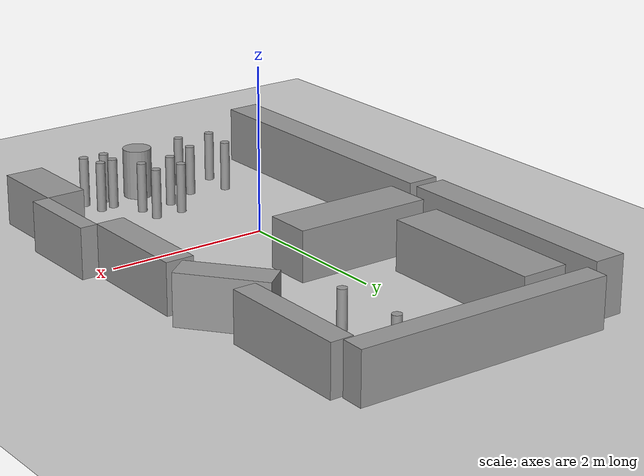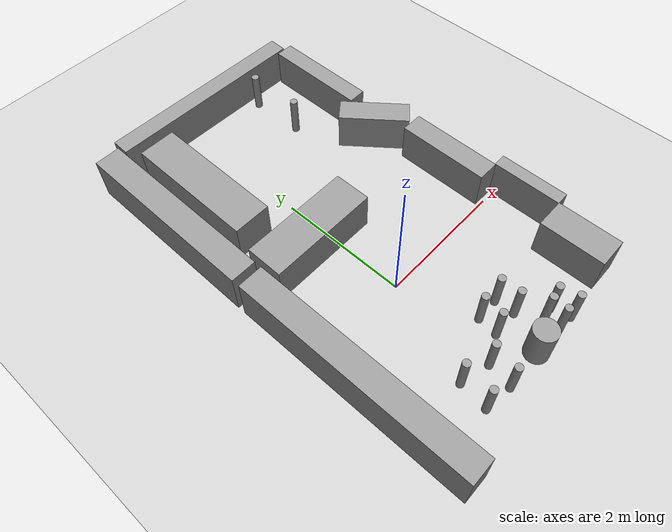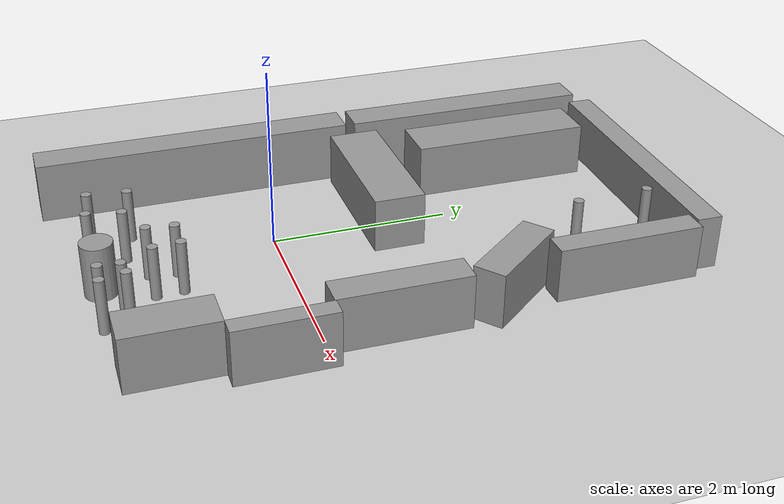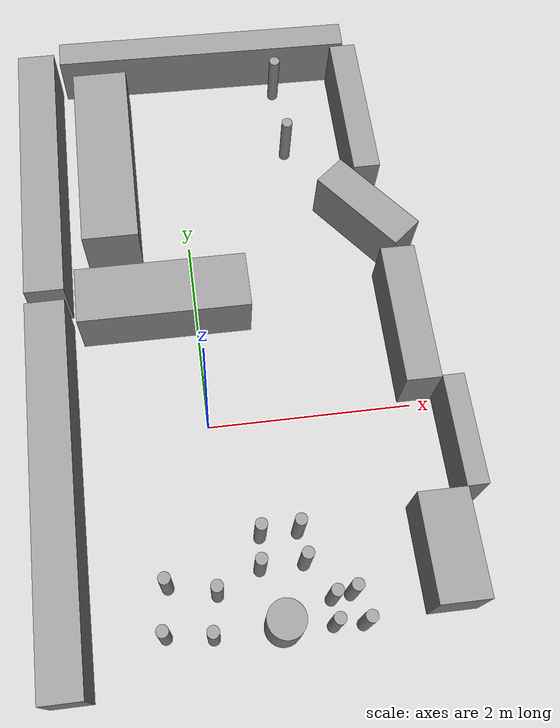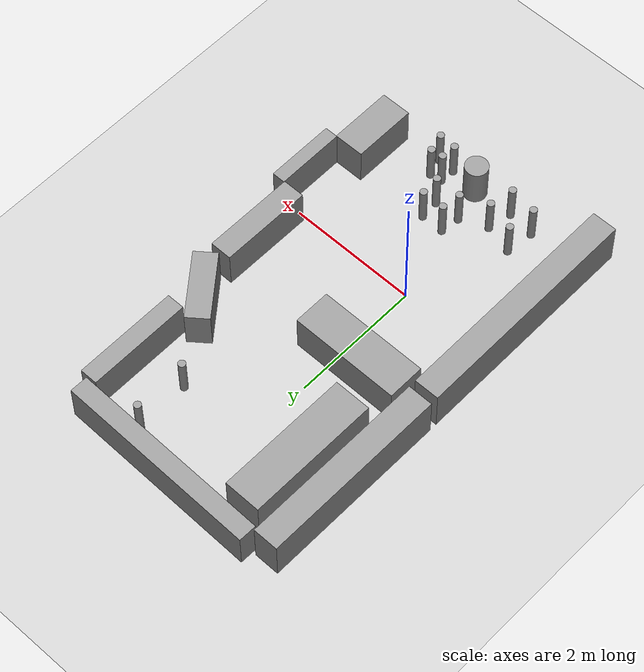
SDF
<sdf version="1.6">
 <world name="default">
  <light name="sun" type="directional">
   <pose>0 0 10 0 -0 0</pose>
   <diffuse>0.8 0.8 0.8 1</diffuse>
   <specular>0.2 0.2 0.2 1</specular>
   <attenuation>
    <range>1000</range>
    <constant>0.9</constant>
    <linear>0.01</linear>
    <quadratic>0.001</quadratic>
   </attenuation>
   <direction>-0.5 0.1 -0.9</direction>
  </light>
  <model name="ground_plane">
   <static>1</static>
   <link name="link">
    <collision name="collision">
     <geometry><plane><normal>0 0 1</normal><size>100 100</size></plane></geometry>
     <surface><friction><ode><mu>100</mu><mu2>50</mu2></ode></friction></surface>
    </collision>
    <visual name="visual">
     <cast_shadows>0</cast_shadows>
     <geometry><plane><normal>0 0 1</normal><size>100 100</size></plane></geometry>
     <material>
      <script><uri>file://media/materials/scripts/gazebo.material</uri><name>Gazebo/Grey</name></script>
     </material>
    </visual>
   </link>
  </model>
  <gravity>0 0 -9.8</gravity>
  <magnetic_field>6e-06 2.3e-05 -4.2e-05</magnetic_field>
  <atmosphere type="adiabatic"/>
  <physics name="default_physics" default="0" type="ode">
   <max_step_size>0.001</max_step_size>
   <real_time_factor>1</real_time_factor>
   <real_time_update_rate>1000</real_time_update_rate>
  </physics>
  <scene><ambient>0.4 0.4 0.4 1</ambient><background>0.7 0.7 0.7 1</background><shadows>1</shadows></scene>
  <spherical_coordinates>
   <surface_model>EARTH_WGS84</surface_model>
   <latitude_deg>0</latitude_deg>
   <longitude_deg>0</longitude_deg>
   <elevation>0</elevation>
   <heading_deg>0</heading_deg>
  </spherical_coordinates>
  <model name="unit_box">
   <pose>-0.311795 1.28479 0.303691 -2e-06 -0 -0.001875</pose>
   <link name="link">
    <inertial>
     <mass>1</mass>
     <inertia>
      <ixx>0.166667</ixx>
      <ixy>0</ixy>
      <ixz>0</ixz>
      <iyy>0.166667</iyy>
      <iyz>0</iyz>
      <izz>0.166667</izz>
     </inertia>
    </inertial>
    <collision name="collision"><geometry><box><size>1.70206 0.569629 0.607381</size></box></geometry></collision>
    <visual name="visual">
     <geometry><box><size>1.70206 0.569629 0.607381</size></box></geometry>
     <material>
      <script><name>Gazebo/Grey</name><uri>file://media/materials/scripts/gazebo.material</uri></script>
     </material>
    </visual>
   </link>
  </model>
  <model name="unit_cylinder">
   <pose>0.358444 -1.12504 0.304923 0 -0 0.001372</pose>
   <link name="link">
    <inertial>
     <mass>1</mass>
     <inertia><ixx>0.145833</ixx><ixy>0</ixy><ixz>0</ixz><iyy>0.145833</iyy><iyz>0</iyz><izz>0.125</izz></inertia>
    </inertial>
    <collision name="collision">
     <geometry><cylinder><radius>0.056641</radius><length>0.609856</length></cylinder></geometry>
    </collision>
    <visual name="visual">
     <geometry><cylinder><radius>0.056641</radius><length>0.609856</length></cylinder></geometry>
     <material>
      <script><name>Gazebo/Grey</name><uri>file://media/materials/scripts/gazebo.material</uri></script>
     </material>
    </visual>
   </link>
  </model>
  <model name="unit_cylinder_clone">
   <pose>0.712411 -1.12237 0.304923 0 -0 0.001089</pose>
   <link name="link">
    <inertial>
     <mass>1</mass>
     <inertia><ixx>0.145833</ixx><ixy>0</ixy><ixz>0</ixz><iyy>0.145833</iyy><iyz>0</iyz><izz>0.125</izz></inertia>
    </inertial>
    <collision name="collision">
     <geometry><cylinder><radius>0.056641</radius><length>0.609856</length></cylinder></geometry>
    </collision>
    <visual name="visual">
     <geometry><cylinder><radius>0.056641</radius><length>0.609856</length></cylinder></geometry>
     <material>
      <script><name>Gazebo/Grey</name><uri>file://media/materials/scripts/gazebo.material</uri></script>
     </material>
    </visual>
   </link>
  </model>
  <model name="unit_cylinder_clone_0">
   <pose>0.321199 -1.42245 0.304923 0 -0 0.003382</pose>
   <link name="link">
    <inertial>
     <mass>1</mass>
     <inertia><ixx>0.145833</ixx><ixy>0</ixy><ixz>0</ixz><iyy>0.145833</iyy><iyz>0</iyz><izz>0.125</izz></inertia>
    </inertial>
    <collision name="collision">
     <geometry><cylinder><radius>0.056641</radius><length>0.609856</length></cylinder></geometry>
    </collision>
    <visual name="visual">
     <geometry><cylinder><radius>0.056641</radius><length>0.609856</length></cylinder></geometry>
     <material>
      <script><name>Gazebo/Grey</name><uri>file://media/materials/scripts/gazebo.material</uri></script>
     </material>
    </visual>
   </link>
  </model>
  <model name="unit_cylinder_clone_1">
   <pose>0.730387 -1.41571 0.304923 0 -0 0.00321</pose>
   <link name="link">
    <inertial>
     <mass>1</mass>
     <inertia><ixx>0.145833</ixx><ixy>0</ixy><ixz>0</ixz><iyy>0.145833</iyy><iyz>0</iyz><izz>0.125</izz></inertia>
    </inertial>
    <collision name="collision">
     <geometry><cylinder><radius>0.056641</radius><length>0.609856</length></cylinder></geometry>
    </collision>
    <visual name="visual">
     <geometry><cylinder><radius>0.056641</radius><length>0.609856</length></cylinder></geometry>
     <material>
      <script><name>Gazebo/Grey</name><uri>file://media/materials/scripts/gazebo.material</uri></script>
     </material>
    </visual>
   </link>
  </model>
  <model name="unit_cylinder_clone_2">
   <pose>0.46977 -1.94113 0.304924 0 -0 0.000112</pose>
   <link name="link">
    <inertial>
     <mass>1</mass>
     <inertia><ixx>0.145833</ixx><ixy>0</ixy><ixz>0</ixz><iyy>0.145833</iyy><iyz>0</iyz><izz>0.125</izz></inertia>
    </inertial>
    <collision name="collision">
     <geometry><cylinder><radius>0.174974</radius><length>0.609856</length></cylinder></geometry>
    </collision>
    <visual name="visual">
     <geometry><cylinder><radius>0.174974</radius><length>0.609856</length></cylinder></geometry>
     <material>
      <script><name>Gazebo/Grey</name><uri>file://media/materials/scripts/gazebo.material</uri></script>
     </material>
    </visual>
   </link>
  </model>
  <model name="unit_cylinder_clone_3">
   <pose>-0.08598 -1.60547 0.30492 0 -0 0.006743</pose>
   <link name="link">
    <inertial>
     <mass>1</mass>
     <inertia><ixx>0.145833</ixx><ixy>0</ixy><ixz>0</ixz><iyy>0.145833</iyy><iyz>0</iyz><izz>0.125</izz></inertia>
    </inertial>
    <collision name="collision">
     <geometry><cylinder><radius>0.056641</radius><length>0.609856</length></cylinder></geometry>
    </collision>
    <visual name="visual">
     <geometry><cylinder><radius>0.056641</radius><length>0.609856</length></cylinder></geometry>
     <material>
      <script><name>Gazebo/Grey</name><uri>file://media/materials/scripts/gazebo.material</uri></script>
     </material>
    </visual>
   </link>
  </model>
  <model name="unit_cylinder_clone_4">
   <pose>-0.157879 -1.97568 0.304923 0 -0 0.003248</pose>
   <link name="link">
    <inertial>
     <mass>1</mass>
     <inertia><ixx>0.145833</ixx><ixy>0</ixy><ixz>0</ixz><iyy>0.145833</iyy><iyz>0</iyz><izz>0.125</izz></inertia>
    </inertial>
    <collision name="collision">
     <geometry><cylinder><radius>0.056641</radius><length>0.609856</length></cylinder></geometry>
    </collision>
    <visual name="visual">
     <geometry><cylinder><radius>0.056641</radius><length>0.609856</length></cylinder></geometry>
     <material>
      <script><name>Gazebo/Grey</name><uri>file://media/materials/scripts/gazebo.material</uri></script>
     </material>
    </visual>
   </link>
  </model>
  <model name="unit_cylinder_clone_5">
   <pose>-0.58124 -1.92098 0.304923 0 -0 0.00161</pose>
   <link name="link">
    <inertial>
     <mass>1</mass>
     <inertia><ixx>0.145833</ixx><ixy>0</ixy><ixz>0</ixz><iyy>0.145833</iyy><iyz>0</iyz><izz>0.125</izz></inertia>
    </inertial>
    <collision name="collision">
     <geometry><cylinder><radius>0.056641</radius><length>0.609856</length></cylinder></geometry>
    </collision>
    <visual name="visual">
     <geometry><cylinder><radius>0.056641</radius><length>0.609856</length></cylinder></geometry>
     <material>
      <script><name>Gazebo/Grey</name><uri>file://media/materials/scripts/gazebo.material</uri></script>
     </material>
    </visual>
   </link>
  </model>
  <model name="unit_cylinder_clone_6">
   <pose>-0.529377 -1.49074 0.304923 0 -0 0.001482</pose>
   <link name="link">
    <inertial>
     <mass>1</mass>
     <inertia><ixx>0.145833</ixx><ixy>0</ixy><ixz>0</ixz><iyy>0.145833</iyy><iyz>0</iyz><izz>0.125</izz></inertia>
    </inertial>
    <collision name="collision">
     <geometry><cylinder><radius>0.056641</radius><length>0.609856</length></cylinder></geometry>
    </collision>
    <visual name="visual">
     <geometry><cylinder><radius>0.056641</radius><length>0.609856</length></cylinder></geometry>
     <material>
      <script><name>Gazebo/Grey</name><uri>file://media/materials/scripts/gazebo.material</uri></script>
     </material>
    </visual>
   </link>
  </model>
  <model name="unit_box_clone_0">
   <pose>2.05284 0.758303 0.303686 2e-06 7e-06 1.56582</pose>
   <link name="link">
    <inertial>
     <mass>1</mass>
     <inertia>
      <ixx>0.166667</ixx>
      <ixy>0</ixy>
      <ixz>0</ixz>
      <iyy>0.166667</iyy>
      <iyz>0</iyz>
      <izz>0.166667</izz>
     </inertia>
    </inertial>
    <collision name="collision"><geometry><box><size>1.41671 0.339182 0.607382</size></box></geometry></collision>
    <visual name="visual">
     <geometry><box><size>1.41671 0.339182 0.607382</size></box></geometry>
     <material>
      <script><name>Gazebo/Grey</name><uri>file://media/materials/scripts/gazebo.material</uri></script>
     </material>
    </visual>
   </link>
  </model>
  <model name="unit_box_clone_0_clone">
   <pose>2.32531 -0.466884 0.303691 0 -0 1.57306</pose>
   <link name="link">
    <inertial>
     <mass>1</mass>
     <inertia>
      <ixx>0.166667</ixx>
      <ixy>0</ixy>
      <ixz>0</ixz>
      <iyy>0.166667</iyy>
      <iyz>0</iyz>
      <izz>0.166667</izz>
     </inertia>
    </inertial>
    <collision name="collision"><geometry><box><size>1.06223 0.205529 0.607382</size></box></geometry></collision>
    <visual name="visual">
     <geometry><box><size>1.06223 0.205529 0.607382</size></box></geometry>
     <material>
      <script><name>Gazebo/Grey</name><uri>file://media/materials/scripts/gazebo.material</uri></script>
     </material>
    </visual>
   </link>
  </model>
  <model name="unit_box_clone_0_clone_0">
   <pose>2.00281 -1.48758 0.303691 0 -0 1.57205</pose>
   <link name="link">
    <inertial>
     <mass>1</mass>
     <inertia>
      <ixx>0.166667</ixx>
      <ixy>0</ixy>
      <ixz>0</ixz>
      <iyy>0.166667</iyy>
      <iyz>0</iyz>
      <izz>0.166667</izz>
     </inertia>
    </inertial>
    <collision name="collision">
     <geometry><box><size>0.978144 0.467544 0.607382</size></box></geometry>
    </collision>
    <visual name="visual">
     <geometry><box><size>0.978144 0.467544 0.607382</size></box></geometry>
     <material>
      <script><name>Gazebo/Grey</name><uri>file://media/materials/scripts/gazebo.material</uri></script>
     </material>
    </visual>
   </link>
  </model>
  <model name="unit_cylinder_clone_1_clone">
   <pose>0.932286 -1.75458 0.30492 -1e-06 -0 0.006175</pose>
   <link name="link">
    <inertial>
     <mass>1</mass>
     <inertia><ixx>0.145833</ixx><ixy>0</ixy><ixz>0</ixz><iyy>0.145833</iyy><iyz>0</iyz><izz>0.125</izz></inertia>
    </inertial>
    <collision name="collision">
     <geometry><cylinder><radius>0.056641</radius><length>0.609856</length></cylinder></geometry>
    </collision>
    <visual name="visual">
     <geometry><cylinder><radius>0.056641</radius><length>0.609856</length></cylinder></geometry>
     <material>
      <script><name>Gazebo/Grey</name><uri>file://media/materials/scripts/gazebo.material</uri></script>
     </material>
    </visual>
   </link>
  </model>
  <model name="unit_cylinder_clone_1_clone_0">
   <pose>1.11421 -1.72835 0.304923 0 -0 0.002377</pose>
   <link name="link">
    <inertial>
     <mass>1</mass>
     <inertia><ixx>0.145833</ixx><ixy>0</ixy><ixz>0</ixz><iyy>0.145833</iyy><iyz>0</iyz><izz>0.125</izz></inertia>
    </inertial>
    <collision name="collision">
     <geometry><cylinder><radius>0.056641</radius><length>0.609856</length></cylinder></geometry>
    </collision>
    <visual name="visual">
     <geometry><cylinder><radius>0.056641</radius><length>0.609856</length></cylinder></geometry>
     <material>
      <script><name>Gazebo/Grey</name><uri>file://media/materials/scripts/gazebo.material</uri></script>
     </material>
    </visual>
   </link>
  </model>
  <model name="unit_cylinder_clone_1_clone_1">
   <pose>0.917272 -1.98464 0.304923 0 -0 0.002041</pose>
   <link name="link">
    <inertial>
     <mass>1</mass>
     <inertia><ixx>0.145833</ixx><ixy>0</ixy><ixz>0</ixz><iyy>0.145833</iyy><iyz>0</iyz><izz>0.125</izz></inertia>
    </inertial>
    <collision name="collision">
     <geometry><cylinder><radius>0.056641</radius><length>0.609856</length></cylinder></geometry>
    </collision>
    <visual name="visual">
     <geometry><cylinder><radius>0.056641</radius><length>0.609856</length></cylinder></geometry>
     <material>
      <script><name>Gazebo/Grey</name><uri>file://media/materials/scripts/gazebo.material</uri></script>
     </material>
    </visual>
   </link>
  </model>
  <model name="unit_cylinder_clone_1_clone_2">
   <pose>1.18677 -1.99872 0.304923 0 -0 0.003244</pose>
   <link name="link">
    <inertial>
     <mass>1</mass>
     <inertia><ixx>0.145833</ixx><ixy>0</ixy><ixz>0</ixz><iyy>0.145833</iyy><iyz>0</iyz><izz>0.125</izz></inertia>
    </inertial>
    <collision name="collision">
     <geometry><cylinder><radius>0.056641</radius><length>0.609856</length></cylinder></geometry>
    </collision>
    <visual name="visual">
     <geometry><cylinder><radius>0.056641</radius><length>0.609856</length></cylinder></geometry>
     <material>
      <script><name>Gazebo/Grey</name><uri>file://media/materials/scripts/gazebo.material</uri></script>
     </material>
    </visual>
   </link>
  </model>
  <model name="unit_box_clone_0_clone_clone">
   <pose>1.85681 2.03101 0.303691 0 -0 2.24562</pose>
   <link name="link">
    <inertial>
     <mass>1</mass>
     <inertia>
      <ixx>0.166667</ixx>
      <ixy>0</ixy>
      <ixz>0</ixz>
      <iyy>0.166667</iyy>
      <iyz>0</iyz>
      <izz>0.166667</izz>
     </inertia>
    </inertial>
    <collision name="collision"><geometry><box><size>1.06223 0.356426 0.607382</size></box></geometry></collision>
    <visual name="visual">
     <geometry><box><size>1.06223 0.356426 0.607382</size></box></geometry>
     <material>
      <script><name>Gazebo/Grey</name><uri>file://media/materials/scripts/gazebo.material</uri></script>
     </material>
    </visual>
   </link>
  </model>
  <model name="unit_box_clone_1">
   <pose>-0.782101 2.92847 0.303692 2e-06 -0 -1.57431</pose>
   <link name="link">
    <inertial>
     <mass>1</mass>
     <inertia>
      <ixx>0.166667</ixx>
      <ixy>0</ixy>
      <ixz>0</ixz>
      <iyy>0.166667</iyy>
      <iyz>0</iyz>
      <izz>0.166667</izz>
     </inertia>
    </inertial>
    <collision name="collision"><geometry><box><size>2.05172 0.569629 0.607382</size></box></geometry></collision>
    <visual name="visual">
     <geometry><box><size>2.05172 0.569629 0.607382</size></box></geometry>
     <material>
      <script><name>Gazebo/Grey</name><uri>file://media/materials/scripts/gazebo.material</uri></script>
     </material>
    </visual>
   </link>
  </model>
  <model name="unit_cylinder_clone_clone">
   <pose>1.17367 3.08132 0.304923 0 -0 0.004903</pose>
   <link name="link">
    <inertial>
     <mass>1</mass>
     <inertia><ixx>0.145833</ixx><ixy>0</ixy><ixz>0</ixz><iyy>0.145833</iyy><iyz>0</iyz><izz>0.125</izz></inertia>
    </inertial>
    <collision name="collision">
     <geometry><cylinder><radius>0.056641</radius><length>0.609856</length></cylinder></geometry>
    </collision>
    <visual name="visual">
     <geometry><cylinder><radius>0.056641</radius><length>0.609856</length></cylinder></geometry>
     <material>
      <script><name>Gazebo/Grey</name><uri>file://media/materials/scripts/gazebo.material</uri></script>
     </material>
    </visual>
   </link>
  </model>
  <model name="unit_cylinder_clone_clone_0">
   <pose>1.1502 3.91441 0.304927 1e-06 -1e-06 0.004302</pose>
   <link name="link">
    <inertial>
     <mass>1</mass>
     <inertia><ixx>0.145833</ixx><ixy>0</ixy><ixz>0</ixz><iyy>0.145833</iyy><iyz>0</iyz><izz>0.125</izz></inertia>
    </inertial>
    <collision name="collision">
     <geometry><cylinder><radius>0.056641</radius><length>0.609856</length></cylinder></geometry>
    </collision>
    <visual name="visual">
     <geometry><cylinder><radius>0.056641</radius><length>0.609856</length></cylinder></geometry>
     <material>
      <script><name>Gazebo/Grey</name><uri>file://media/materials/scripts/gazebo.material</uri></script>
     </material>
    </visual>
   </link>
  </model>
  <model name="unit_box_clone_clone">
   <pose>0.367844 4.24607 0.302054 -0.000201 -4e-06 1.55185</pose>
   <link name="link">
    <inertial>
     <mass>1</mass>
     <inertia>
      <ixx>0.166667</ixx>
      <ixy>0</ixy>
      <ixz>0</ixz>
      <iyy>0.166667</iyy>
      <iyz>0</iyz>
      <izz>0.166667</izz>
     </inertia>
    </inertial>
    <collision name="collision"><geometry><box><size>0.27855 3.13414 0.604736</size></box></geometry></collision>
    <visual name="visual">
     <geometry><box><size>0.27855 3.13414 0.604736</size></box></geometry>
     <material>
      <script><name>Gazebo/Grey</name><uri>file://media/materials/scripts/gazebo.material</uri></script>
     </material>
    </visual>
   </link>
  </model>
  <model name="unit_box_0">
   <pose>-1.44575 -0.586635 0.33937 0.00032 -3e-06 0.004167</pose>
   <link name="link">
    <inertial>
     <mass>1</mass>
     <inertia>
      <ixx>0.166667</ixx>
      <ixy>0</ixy>
      <ixz>0</ixz>
      <iyy>0.166667</iyy>
      <iyz>0</iyz>
      <izz>0.166667</izz>
     </inertia>
    </inertial>
    <collision name="collision"><geometry><box><size>0.389101 3.61355 0.679893</size></box></geometry></collision>
    <visual name="visual">
     <geometry><box><size>0.389101 3.61355 0.679893</size></box></geometry>
     <material>
      <script><name>Gazebo/Grey</name><uri>file://media/materials/scripts/gazebo.material</uri></script>
     </material>
    </visual>
   </link>
  </model>
  <model name="unit_box_0_clone">
   <pose>-1.4511 2.77449 0.337988 -0.000137 -0 -0.0028</pose>
   <link name="link">
    <inertial>
     <mass>1</mass>
     <inertia>
      <ixx>0.166667</ixx>
      <ixy>0</ixy>
      <ixz>0</ixz>
      <iyy>0.166667</iyy>
      <iyz>0</iyz>
      <izz>0.166667</izz>
     </inertia>
    </inertial>
    <collision name="collision"><geometry><box><size>0.389101 2.88027 0.67637</size></box></geometry></collision>
    <visual name="visual">
     <geometry><box><size>0.389101 2.88027 0.67637</size></box></geometry>
     <material>
      <script><name>Gazebo/Grey</name><uri>file://media/materials/scripts/gazebo.material</uri></script>
     </material>
    </visual>
   </link>
  </model>
  <model name="unit_box_1">
   <pose>1.92421 3.24946 0.299874 0 -0 0.000155</pose>
   <link name="link">
    <inertial>
     <mass>1</mass>
     <inertia>
      <ixx>0.166667</ixx>
      <ixy>0</ixy>
      <ixz>0</ixz>
      <iyy>0.166667</iyy>
      <iyz>0</iyz>
      <izz>0.166667</izz>
     </inertia>
    </inertial>
    <collision name="collision"><geometry><box><size>0.274323 1.6036 0.599747</size></box></geometry></collision>
    <visual name="visual">
     <geometry><box><size>0.274323 1.6036 0.599747</size></box></geometry>
     <material>
      <script><name>Gazebo/Grey</name><uri>file://media/materials/scripts/gazebo.material</uri></script>
     </material>
    </visual>
   </link>
  </model>
 </world>
</sdf>
